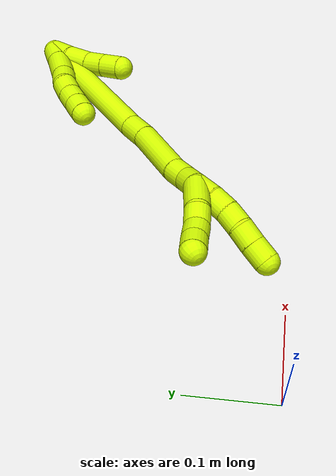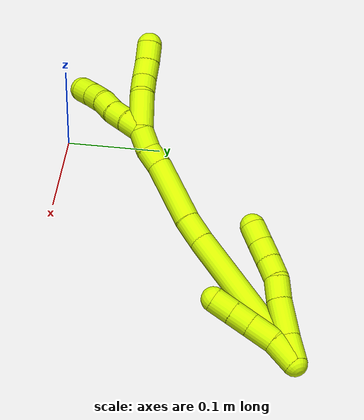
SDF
<sdf version="1.7">
 <world name="default">
  <model name="15">
   <static>0</static>
   <link name="15">
    <collision name="collision-cylinder-e_1_2_8">
     <pose>-0.002762 0.001608 -0.012969 -3.01821 -0.208255 2.07391</pose>
     <geometry><cylinder><radius>0.0125</radius><length>0.026714</length></cylinder></geometry>
     <surface>
      <friction><ode><mu>1.16</mu><mu2>1.16</mu2><slip1>0</slip1><slip2>0</slip2></ode></friction>
      <contact><ode><kp>1e+06</kp><kd>1</kd><max_vel>0</max_vel><min_depth>0.001</min_depth></ode></contact>
     </surface>
    </collision>
    <visual name="visual-cylinder-e_1_2_8">
     <pose>-0.002762 0.001608 -0.012969 -3.01821 -0.208255 2.07391</pose>
     <geometry><cylinder><radius>0.0125</radius><length>0.026714</length></cylinder></geometry>
     <material><ambient>0.835294 1 0 1</ambient></material>
    </visual>
    <collision name="collision-cylinder-e_2_8_9">
     <pose>-0.010261 0.006136 -0.044329 -2.98418 -0.249156 2.0175</pose>
     <geometry><cylinder><radius>0.0125</radius><length>0.038429</length></cylinder></geometry>
     <surface>
      <friction><ode><mu>1.16</mu><mu2>1.16</mu2><slip1>0</slip1><slip2>0</slip2></ode></friction>
      <contact><ode><kp>1e+06</kp><kd>1</kd><max_vel>0</max_vel><min_depth>0.001</min_depth></ode></contact>
     </surface>
    </collision>
    <visual name="visual-cylinder-e_2_8_9">
     <pose>-0.010261 0.006136 -0.044329 -2.98418 -0.249156 2.0175</pose>
     <geometry><cylinder><radius>0.0125</radius><length>0.038429</length></cylinder></geometry>
     <material><ambient>0.835294 1 0 1</ambient></material>
    </visual>
    <collision name="collision-cylinder-e_3_9_10">
     <pose>-0.018651 0.011561 -0.073244 -2.90781 -0.325534 1.90007</pose>
     <geometry><cylinder><radius>0.0125</radius><length>0.022836</length></cylinder></geometry>
     <surface>
      <friction><ode><mu>1.16</mu><mu2>1.16</mu2><slip1>0</slip1><slip2>0</slip2></ode></friction>
      <contact><ode><kp>1e+06</kp><kd>1</kd><max_vel>0</max_vel><min_depth>0.001</min_depth></ode></contact>
     </surface>
    </collision>
    <visual name="visual-cylinder-e_3_9_10">
     <pose>-0.018651 0.011561 -0.073244 -2.90781 -0.325534 1.90007</pose>
     <geometry><cylinder><radius>0.0125</radius><length>0.022836</length></cylinder></geometry>
     <material><ambient>0.835294 1 0 1</ambient></material>
    </visual>
    <collision name="collision-cylinder-e_4_10_11">
     <pose>-0.023043 0.014565 -0.094328 -3.09452 -0.069893 1.95637</pose>
     <geometry><cylinder><radius>0.0125</radius><length>0.021194</length></cylinder></geometry>
     <surface>
      <friction><ode><mu>1.16</mu><mu2>1.16</mu2><slip1>0</slip1><slip2>0</slip2></ode></friction>
      <contact><ode><kp>1e+06</kp><kd>1</kd><max_vel>0</max_vel><min_depth>0.001</min_depth></ode></contact>
     </surface>
    </collision>
    <visual name="visual-cylinder-e_4_10_11">
     <pose>-0.023043 0.014565 -0.094328 -3.09452 -0.069893 1.95637</pose>
     <geometry><cylinder><radius>0.0125</radius><length>0.021194</length></cylinder></geometry>
     <material><ambient>0.835294 1 0 1</ambient></material>
    </visual>
    <collision name="collision-cylinder-e_5_11_12">
     <pose>-0.025278 0.014896 -0.115026 3.12521 -0.146408 -2.91906</pose>
     <geometry><cylinder><radius>0.0125</radius><length>0.020499</length></cylinder></geometry>
     <surface>
      <friction><ode><mu>1.16</mu><mu2>1.16</mu2><slip1>0</slip1><slip2>0</slip2></ode></friction>
      <contact><ode><kp>1e+06</kp><kd>1</kd><max_vel>0</max_vel><min_depth>0.001</min_depth></ode></contact>
     </surface>
    </collision>
    <visual name="visual-cylinder-e_5_11_12">
     <pose>-0.025278 0.014896 -0.115026 3.12521 -0.146408 -2.91906</pose>
     <geometry><cylinder><radius>0.0125</radius><length>0.020499</length></cylinder></geometry>
     <material><ambient>0.835294 1 0 1</ambient></material>
    </visual>
    <collision name="collision-cylinder-e_6_12_6">
     <pose>-0.02828 0.014616 -0.135215 3.13031 -0.148748 -2.99048</pose>
     <geometry><cylinder><radius>0.0125</radius><length>0.020328</length></cylinder></geometry>
     <surface>
      <friction><ode><mu>1.16</mu><mu2>1.16</mu2><slip1>0</slip1><slip2>0</slip2></ode></friction>
      <contact><ode><kp>1e+06</kp><kd>1</kd><max_vel>0</max_vel><min_depth>0.001</min_depth></ode></contact>
     </surface>
    </collision>
    <visual name="visual-cylinder-e_6_12_6">
     <pose>-0.02828 0.014616 -0.135215 3.13031 -0.148748 -2.99048</pose>
     <geometry><cylinder><radius>0.0125</radius><length>0.020328</length></cylinder></geometry>
     <material><ambient>0.835294 1 0 1</ambient></material>
    </visual>
    <collision name="collision-cylinder-e_1_2_13">
     <pose>-0.002238 -0.005172 -0.013307 2.77088 -0.155518 -0.787659</pose>
     <geometry><cylinder><radius>0.0125</radius><length>0.028903</length></cylinder></geometry>
     <surface>
      <friction><ode><mu>1.16</mu><mu2>1.16</mu2><slip1>0</slip1><slip2>0</slip2></ode></friction>
      <contact><ode><kp>1e+06</kp><kd>1</kd><max_vel>0</max_vel><min_depth>0.001</min_depth></ode></contact>
     </surface>
    </collision>
    <visual name="visual-cylinder-e_1_2_13">
     <pose>-0.002238 -0.005172 -0.013307 2.77088 -0.155518 -0.787659</pose>
     <geometry><cylinder><radius>0.0125</radius><length>0.028903</length></cylinder></geometry>
     <material><ambient>0.835294 1 0 1</ambient></material>
    </visual>
    <collision name="collision-cylinder-e_2_13_14">
     <pose>-0.004599 -0.017598 -0.038446 2.59164 -0.00879 -0.031155</pose>
     <geometry><cylinder><radius>0.0125</radius><length>0.027756</length></cylinder></geometry>
     <surface>
      <friction><ode><mu>1.16</mu><mu2>1.16</mu2><slip1>0</slip1><slip2>0</slip2></ode></friction>
      <contact><ode><kp>1e+06</kp><kd>1</kd><max_vel>0</max_vel><min_depth>0.001</min_depth></ode></contact>
     </surface>
    </collision>
    <visual name="visual-cylinder-e_2_13_14">
     <pose>-0.004599 -0.017598 -0.038446 2.59164 -0.00879 -0.031155</pose>
     <geometry><cylinder><radius>0.0125</radius><length>0.027756</length></cylinder></geometry>
     <material><ambient>0.835294 1 0 1</ambient></material>
    </visual>
    <collision name="collision-cylinder-e_3_14_15">
     <pose>-0.005879 -0.031154 -0.058944 2.51283 -0.107687 -0.328512</pose>
     <geometry><cylinder><radius>0.0125</radius><length>0.021558</length></cylinder></geometry>
     <surface>
      <friction><ode><mu>1.16</mu><mu2>1.16</mu2><slip1>0</slip1><slip2>0</slip2></ode></friction>
      <contact><ode><kp>1e+06</kp><kd>1</kd><max_vel>0</max_vel><min_depth>0.001</min_depth></ode></contact>
     </surface>
    </collision>
    <visual name="visual-cylinder-e_3_14_15">
     <pose>-0.005879 -0.031154 -0.058944 2.51283 -0.107687 -0.328512</pose>
     <geometry><cylinder><radius>0.0125</radius><length>0.021558</length></cylinder></geometry>
     <material><ambient>0.835294 1 0 1</ambient></material>
    </visual>
    <collision name="collision-cylinder-e_4_15_5">
     <pose>-0.008204 -0.043835 -0.076362 2.51172 -0.107262 -0.32663</pose>
     <geometry><cylinder><radius>0.0125</radius><length>0.021782</length></cylinder></geometry>
     <surface>
      <friction><ode><mu>1.16</mu><mu2>1.16</mu2><slip1>0</slip1><slip2>0</slip2></ode></friction>
      <contact><ode><kp>1e+06</kp><kd>1</kd><max_vel>0</max_vel><min_depth>0.001</min_depth></ode></contact>
     </surface>
    </collision>
    <visual name="visual-cylinder-e_4_15_5">
     <pose>-0.008204 -0.043835 -0.076362 2.51172 -0.107262 -0.32663</pose>
     <geometry><cylinder><radius>0.0125</radius><length>0.021782</length></cylinder></geometry>
     <material><ambient>0.835294 1 0 1</ambient></material>
    </visual>
    <collision name="collision-cylinder-e_1_2_16">
     <pose>0.000625 -0.013062 -0.080764 2.98125 0.007643 0.09506</pose>
     <geometry><cylinder><radius>0.0125</radius><length>0.163632</length></cylinder></geometry>
     <surface>
      <friction><ode><mu>1.16</mu><mu2>1.16</mu2><slip1>0</slip1><slip2>0</slip2></ode></friction>
      <contact><ode><kp>1e+06</kp><kd>1</kd><max_vel>0</max_vel><min_depth>0.001</min_depth></ode></contact>
     </surface>
    </collision>
    <visual name="visual-cylinder-e_1_2_16">
     <pose>0.000625 -0.013062 -0.080764 2.98125 0.007643 0.09506</pose>
     <geometry><cylinder><radius>0.0125</radius><length>0.163632</length></cylinder></geometry>
     <material><ambient>0.835294 1 0 1</ambient></material>
    </visual>
    <collision name="collision-cylinder-e_2_16_17">
     <pose>-0.000357 -0.028575 -0.174678 2.95736 -0.11964 -1.15038</pose>
     <geometry><cylinder><radius>0.0125</radius><length>0.026944</length></cylinder></geometry>
     <surface>
      <friction><ode><mu>1.16</mu><mu2>1.16</mu2><slip1>0</slip1><slip2>0</slip2></ode></friction>
      <contact><ode><kp>1e+06</kp><kd>1</kd><max_vel>0</max_vel><min_depth>0.001</min_depth></ode></contact>
     </surface>
    </collision>
    <visual name="visual-cylinder-e_2_16_17">
     <pose>-0.000357 -0.028575 -0.174678 2.95736 -0.11964 -1.15038</pose>
     <geometry><cylinder><radius>0.0125</radius><length>0.026944</length></cylinder></geometry>
     <material><ambient>0.835294 1 0 1</ambient></material>
    </visual>
    <collision name="collision-cylinder-e_3_17_18">
     <pose>-0.006497 -0.033076 -0.220896 3.07966 -0.135939 -2.28756</pose>
     <geometry><cylinder><radius>0.0125</radius><length>0.066881</length></cylinder></geometry>
     <surface>
      <friction><ode><mu>1.16</mu><mu2>1.16</mu2><slip1>0</slip1><slip2>0</slip2></ode></friction>
      <contact><ode><kp>1e+06</kp><kd>1</kd><max_vel>0</max_vel><min_depth>0.001</min_depth></ode></contact>
     </surface>
    </collision>
    <visual name="visual-cylinder-e_3_17_18">
     <pose>-0.006497 -0.033076 -0.220896 3.07966 -0.135939 -2.28756</pose>
     <geometry><cylinder><radius>0.0125</radius><length>0.066881</length></cylinder></geometry>
     <material><ambient>0.835294 1 0 1</ambient></material>
    </visual>
    <collision name="collision-cylinder-e_4_18_19">
     <pose>-0.012459 -0.037306 -0.263945 2.92662 -0.139081 -1.14642</pose>
     <geometry><cylinder><radius>0.0125</radius><length>0.02063</length></cylinder></geometry>
     <surface>
      <friction><ode><mu>1.16</mu><mu2>1.16</mu2><slip1>0</slip1><slip2>0</slip2></ode></friction>
      <contact><ode><kp>1e+06</kp><kd>1</kd><max_vel>0</max_vel><min_depth>0.001</min_depth></ode></contact>
     </surface>
    </collision>
    <visual name="visual-cylinder-e_4_18_19">
     <pose>-0.012459 -0.037306 -0.263945 2.92662 -0.139081 -1.14642</pose>
     <geometry><cylinder><radius>0.0125</radius><length>0.02063</length></cylinder></geometry>
     <material><ambient>0.835294 1 0 1</ambient></material>
    </visual>
    <collision name="collision-cylinder-e_5_19_1">
     <pose>-0.018326 -0.040324 -0.283907 3.0577 -0.416985 -2.7499</pose>
     <geometry><cylinder><radius>0.0125</radius><length>0.021912</length></cylinder></geometry>
     <surface>
      <friction><ode><mu>1.16</mu><mu2>1.16</mu2><slip1>0</slip1><slip2>0</slip2></ode></friction>
      <contact><ode><kp>1e+06</kp><kd>1</kd><max_vel>0</max_vel><min_depth>0.001</min_depth></ode></contact>
     </surface>
    </collision>
    <visual name="visual-cylinder-e_5_19_1">
     <pose>-0.018326 -0.040324 -0.283907 3.0577 -0.416985 -2.7499</pose>
     <geometry><cylinder><radius>0.0125</radius><length>0.021912</length></cylinder></geometry>
     <material><ambient>0.835294 1 0 1</ambient></material>
    </visual>
    <collision name="collision-cylinder-e_1_1_20">
     <pose>-0.020862 -0.044698 -0.303049 2.77331 0.191285 0.95128</pose>
     <geometry><cylinder><radius>0.0125</radius><length>0.02</length></cylinder></geometry>
     <surface>
      <friction><ode><mu>1.16</mu><mu2>1.16</mu2><slip1>0</slip1><slip2>0</slip2></ode></friction>
      <contact><ode><kp>1e+06</kp><kd>1</kd><max_vel>0</max_vel><min_depth>0.001</min_depth></ode></contact>
     </surface>
    </collision>
    <visual name="visual-cylinder-e_1_1_20">
     <pose>-0.020862 -0.044698 -0.303049 2.77331 0.191285 0.95128</pose>
     <geometry><cylinder><radius>0.0125</radius><length>0.02</length></cylinder></geometry>
     <material><ambient>0.835294 1 0 1</ambient></material>
    </visual>
    <collision name="collision-cylinder-e_2_20_21">
     <pose>-0.016222 -0.051053 -0.321403 2.84399 0.277494 1.49993</pose>
     <geometry><cylinder><radius>0.0125</radius><length>0.02</length></cylinder></geometry>
     <surface>
      <friction><ode><mu>1.16</mu><mu2>1.16</mu2><slip1>0</slip1><slip2>0</slip2></ode></friction>
      <contact><ode><kp>1e+06</kp><kd>1</kd><max_vel>0</max_vel><min_depth>0.001</min_depth></ode></contact>
     </surface>
    </collision>
    <visual name="visual-cylinder-e_2_20_21">
     <pose>-0.016222 -0.051053 -0.321403 2.84399 0.277494 1.49993</pose>
     <geometry><cylinder><radius>0.0125</radius><length>0.02</length></cylinder></geometry>
     <material><ambient>0.835294 1 0 1</ambient></material>
    </visual>
    <collision name="collision-cylinder-e_3_21_22">
     <pose>-0.011297 -0.054991 -0.340291 3.02677 0.220352 2.18325</pose>
     <geometry><cylinder><radius>0.0125</radius><length>0.02</length></cylinder></geometry>
     <surface>
      <friction><ode><mu>1.16</mu><mu2>1.16</mu2><slip1>0</slip1><slip2>0</slip2></ode></friction>
      <contact><ode><kp>1e+06</kp><kd>1</kd><max_vel>0</max_vel><min_depth>0.001</min_depth></ode></contact>
     </surface>
    </collision>
    <visual name="visual-cylinder-e_3_21_22">
     <pose>-0.011297 -0.054991 -0.340291 3.02677 0.220352 2.18325</pose>
     <geometry><cylinder><radius>0.0125</radius><length>0.02</length></cylinder></geometry>
     <material><ambient>0.835294 1 0 1</ambient></material>
    </visual>
    <collision name="collision-cylinder-e_4_22_23">
     <pose>-0.004705 -0.057276 -0.358886 3.0112 0.456204 2.59327</pose>
     <geometry><cylinder><radius>0.0125</radius><length>0.02</length></cylinder></geometry>
     <surface>
      <friction><ode><mu>1.16</mu><mu2>1.16</mu2><slip1>0</slip1><slip2>0</slip2></ode></friction>
      <contact><ode><kp>1e+06</kp><kd>1</kd><max_vel>0</max_vel><min_depth>0.001</min_depth></ode></contact>
     </surface>
    </collision>
    <visual name="visual-cylinder-e_4_22_23">
     <pose>-0.004705 -0.057276 -0.358886 3.0112 0.456204 2.59327</pose>
     <geometry><cylinder><radius>0.0125</radius><length>0.02</length></cylinder></geometry>
     <material><ambient>0.835294 1 0 1</ambient></material>
    </visual>
    <collision name="collision-cylinder-e_5_23_4">
     <pose>0.004098 -0.060152 -0.376604 2.95018 0.455386 2.35604</pose>
     <geometry><cylinder><radius>0.0125</radius><length>0.02</length></cylinder></geometry>
     <surface>
      <friction><ode><mu>1.16</mu><mu2>1.16</mu2><slip1>0</slip1><slip2>0</slip2></ode></friction>
      <contact><ode><kp>1e+06</kp><kd>1</kd><max_vel>0</max_vel><min_depth>0.001</min_depth></ode></contact>
     </surface>
    </collision>
    <visual name="visual-cylinder-e_5_23_4">
     <pose>0.004098 -0.060152 -0.376604 2.95018 0.455386 2.35604</pose>
     <geometry><cylinder><radius>0.0125</radius><length>0.02</length></cylinder></geometry>
     <material><ambient>0.835294 1 0 1</ambient></material>
    </visual>
    <collision name="collision-cylinder-e_1_1_24">
     <pose>-0.028535 -0.034127 -0.311697 -2.76527 -0.292756 1.31772</pose>
     <geometry><cylinder><radius>0.0125</radius><length>0.039996</length></cylinder></geometry>
     <surface>
      <friction><ode><mu>1.16</mu><mu2>1.16</mu2><slip1>0</slip1><slip2>0</slip2></ode></friction>
      <contact><ode><kp>1e+06</kp><kd>1</kd><max_vel>0</max_vel><min_depth>0.001</min_depth></ode></contact>
     </surface>
    </collision>
    <visual name="visual-cylinder-e_1_1_24">
     <pose>-0.028535 -0.034127 -0.311697 -2.76527 -0.292756 1.31772</pose>
     <geometry><cylinder><radius>0.0125</radius><length>0.039996</length></cylinder></geometry>
     <material><ambient>0.835294 1 0 1</ambient></material>
    </visual>
    <collision name="collision-cylinder-e_2_24_25">
     <pose>-0.034437 -0.022321 -0.338293 -2.64439 -0.01304 0.051358</pose>
     <geometry><cylinder><radius>0.0125</radius><length>0.020002</length></cylinder></geometry>
     <surface>
      <friction><ode><mu>1.16</mu><mu2>1.16</mu2><slip1>0</slip1><slip2>0</slip2></ode></friction>
      <contact><ode><kp>1e+06</kp><kd>1</kd><max_vel>0</max_vel><min_depth>0.001</min_depth></ode></contact>
     </surface>
    </collision>
    <visual name="visual-cylinder-e_2_24_25">
     <pose>-0.034437 -0.022321 -0.338293 -2.64439 -0.01304 0.051358</pose>
     <geometry><cylinder><radius>0.0125</radius><length>0.020002</length></cylinder></geometry>
     <material><ambient>0.835294 1 0 1</ambient></material>
    </visual>
    <collision name="collision-cylinder-e_3_25_26">
     <pose>-0.038076 -0.012981 -0.355257 -2.63184 -0.358523 1.2154</pose>
     <geometry><cylinder><radius>0.0125</radius><length>0.020001</length></cylinder></geometry>
     <surface>
      <friction><ode><mu>1.16</mu><mu2>1.16</mu2><slip1>0</slip1><slip2>0</slip2></ode></friction>
      <contact><ode><kp>1e+06</kp><kd>1</kd><max_vel>0</max_vel><min_depth>0.001</min_depth></ode></contact>
     </surface>
    </collision>
    <visual name="visual-cylinder-e_3_25_26">
     <pose>-0.038076 -0.012981 -0.355257 -2.63184 -0.358523 1.2154</pose>
     <geometry><cylinder><radius>0.0125</radius><length>0.020001</length></cylinder></geometry>
     <material><ambient>0.835294 1 0 1</ambient></material>
    </visual>
    <collision name="collision-cylinder-e_4_26_3">
     <pose>-0.045489 -0.004442 -0.371738 -2.69575 -0.401002 1.46178</pose>
     <geometry><cylinder><radius>0.0125</radius><length>0.020001</length></cylinder></geometry>
     <surface>
      <friction><ode><mu>1.16</mu><mu2>1.16</mu2><slip1>0</slip1><slip2>0</slip2></ode></friction>
      <contact><ode><kp>1e+06</kp><kd>1</kd><max_vel>0</max_vel><min_depth>0.001</min_depth></ode></contact>
     </surface>
    </collision>
    <visual name="visual-cylinder-e_4_26_3">
     <pose>-0.045489 -0.004442 -0.371738 -2.69575 -0.401002 1.46178</pose>
     <geometry><cylinder><radius>0.0125</radius><length>0.020001</length></cylinder></geometry>
     <material><ambient>0.835294 1 0 1</ambient></material>
    </visual>
    <collision name="collision-sphere-3">
     <pose>-0.049392 -0.000471 -0.380045 0 -0 0</pose>
     <geometry><sphere><radius>0.0125</radius></sphere></geometry>
     <surface>
      <friction><ode><mu>1.16</mu><mu2>1.16</mu2><slip1>0</slip1><slip2>0</slip2></ode></friction>
      <contact><ode><kp>1e+06</kp><kd>1</kd><max_vel>0</max_vel><min_depth>0.001</min_depth></ode></contact>
     </surface>
    </collision>
    <visual name="visual-sphere-3">
     <pose>-0.049392 -0.000471 -0.380045 0 -0 0</pose>
     <geometry><sphere><radius>0.0125</radius></sphere></geometry>
     <material><ambient>0.835294 1 0 1</ambient></material>
    </visual>
    <collision name="collision-sphere-26">
     <pose>-0.041585 -0.008412 -0.363431 0 -0 0</pose>
     <geometry><sphere><radius>0.0125</radius></sphere></geometry>
     <surface>
      <friction><ode><mu>1.16</mu><mu2>1.16</mu2><slip1>0</slip1><slip2>0</slip2></ode></friction>
      <contact><ode><kp>1e+06</kp><kd>1</kd><max_vel>0</max_vel><min_depth>0.001</min_depth></ode></contact>
     </surface>
    </collision>
    <visual name="visual-sphere-26">
     <pose>-0.041585 -0.008412 -0.363431 0 -0 0</pose>
     <geometry><sphere><radius>0.0125</radius></sphere></geometry>
     <material><ambient>0.835294 1 0 1</ambient></material>
    </visual>
    <collision name="collision-sphere-25">
     <pose>-0.034567 -0.017551 -0.347083 0 -0 0</pose>
     <geometry><sphere><radius>0.0125</radius></sphere></geometry>
     <surface>
      <friction><ode><mu>1.16</mu><mu2>1.16</mu2><slip1>0</slip1><slip2>0</slip2></ode></friction>
      <contact><ode><kp>1e+06</kp><kd>1</kd><max_vel>0</max_vel><min_depth>0.001</min_depth></ode></contact>
     </surface>
    </collision>
    <visual name="visual-sphere-25">
     <pose>-0.034567 -0.017551 -0.347083 0 -0 0</pose>
     <geometry><sphere><radius>0.0125</radius></sphere></geometry>
     <material><ambient>0.835294 1 0 1</ambient></material>
    </visual>
    <collision name="collision-sphere-24">
     <pose>-0.034306 -0.027091 -0.329504 0 -0 0</pose>
     <geometry><sphere><radius>0.0125</radius></sphere></geometry>
     <surface>
      <friction><ode><mu>1.16</mu><mu2>1.16</mu2><slip1>0</slip1><slip2>0</slip2></ode></friction>
      <contact><ode><kp>1e+06</kp><kd>1</kd><max_vel>0</max_vel><min_depth>0.001</min_depth></ode></contact>
     </surface>
    </collision>
    <visual name="visual-sphere-24">
     <pose>-0.034306 -0.027091 -0.329504 0 -0 0</pose>
     <geometry><sphere><radius>0.0125</radius></sphere></geometry>
     <material><ambient>0.835294 1 0 1</ambient></material>
    </visual>
    <collision name="collision-sphere-4">
     <pose>0.008496 -0.061861 -0.385421 0 -0 0</pose>
     <geometry><sphere><radius>0.0125</radius></sphere></geometry>
     <surface>
      <friction><ode><mu>1.16</mu><mu2>1.16</mu2><slip1>0</slip1><slip2>0</slip2></ode></friction>
      <contact><ode><kp>1e+06</kp><kd>1</kd><max_vel>0</max_vel><min_depth>0.001</min_depth></ode></contact>
     </surface>
    </collision>
    <visual name="visual-sphere-4">
     <pose>0.008496 -0.061861 -0.385421 0 -0 0</pose>
     <geometry><sphere><radius>0.0125</radius></sphere></geometry>
     <material><ambient>0.835294 1 0 1</ambient></material>
    </visual>
    <collision name="collision-sphere-23">
     <pose>-0.0003 -0.058443 -0.367787 0 -0 0</pose>
     <geometry><sphere><radius>0.0125</radius></sphere></geometry>
     <surface>
      <friction><ode><mu>1.16</mu><mu2>1.16</mu2><slip1>0</slip1><slip2>0</slip2></ode></friction>
      <contact><ode><kp>1e+06</kp><kd>1</kd><max_vel>0</max_vel><min_depth>0.001</min_depth></ode></contact>
     </surface>
    </collision>
    <visual name="visual-sphere-23">
     <pose>-0.0003 -0.058443 -0.367787 0 -0 0</pose>
     <geometry><sphere><radius>0.0125</radius></sphere></geometry>
     <material><ambient>0.835294 1 0 1</ambient></material>
    </visual>
    <collision name="collision-sphere-22">
     <pose>-0.009111 -0.056109 -0.349985 0 -0 0</pose>
     <geometry><sphere><radius>0.0125</radius></sphere></geometry>
     <surface>
      <friction><ode><mu>1.16</mu><mu2>1.16</mu2><slip1>0</slip1><slip2>0</slip2></ode></friction>
      <contact><ode><kp>1e+06</kp><kd>1</kd><max_vel>0</max_vel><min_depth>0.001</min_depth></ode></contact>
     </surface>
    </collision>
    <visual name="visual-sphere-22">
     <pose>-0.009111 -0.056109 -0.349985 0 -0 0</pose>
     <geometry><sphere><radius>0.0125</radius></sphere></geometry>
     <material><ambient>0.835294 1 0 1</ambient></material>
    </visual>
    <collision name="collision-sphere-21">
     <pose>-0.013482 -0.053873 -0.330597 0 -0 0</pose>
     <geometry><sphere><radius>0.0125</radius></sphere></geometry>
     <surface>
      <friction><ode><mu>1.16</mu><mu2>1.16</mu2><slip1>0</slip1><slip2>0</slip2></ode></friction>
      <contact><ode><kp>1e+06</kp><kd>1</kd><max_vel>0</max_vel><min_depth>0.001</min_depth></ode></contact>
     </surface>
    </collision>
    <visual name="visual-sphere-21">
     <pose>-0.013482 -0.053873 -0.330597 0 -0 0</pose>
     <geometry><sphere><radius>0.0125</radius></sphere></geometry>
     <material><ambient>0.835294 1 0 1</ambient></material>
    </visual>
    <collision name="collision-sphere-20">
     <pose>-0.018961 -0.048233 -0.312208 0 -0 0</pose>
     <geometry><sphere><radius>0.0125</radius></sphere></geometry>
     <surface>
      <friction><ode><mu>1.16</mu><mu2>1.16</mu2><slip1>0</slip1><slip2>0</slip2></ode></friction>
      <contact><ode><kp>1e+06</kp><kd>1</kd><max_vel>0</max_vel><min_depth>0.001</min_depth></ode></contact>
     </surface>
    </collision>
    <visual name="visual-sphere-20">
     <pose>-0.018961 -0.048233 -0.312208 0 -0 0</pose>
     <geometry><sphere><radius>0.0125</radius></sphere></geometry>
     <material><ambient>0.835294 1 0 1</ambient></material>
    </visual>
    <collision name="collision-sphere-12">
     <pose>-0.026773 0.01473 -0.125164 0 -0 0</pose>
     <geometry><sphere><radius>0.0125</radius></sphere></geometry>
     <surface>
      <friction><ode><mu>1.16</mu><mu2>1.16</mu2><slip1>0</slip1><slip2>0</slip2></ode></friction>
      <contact><ode><kp>1e+06</kp><kd>1</kd><max_vel>0</max_vel><min_depth>0.001</min_depth></ode></contact>
     </surface>
    </collision>
    <visual name="visual-sphere-12">
     <pose>-0.026773 0.01473 -0.125164 0 -0 0</pose>
     <geometry><sphere><radius>0.0125</radius></sphere></geometry>
     <material><ambient>0.835294 1 0 1</ambient></material>
    </visual>
    <collision name="collision-sphere-11">
     <pose>-0.023783 0.015062 -0.104887 0 -0 0</pose>
     <geometry><sphere><radius>0.0125</radius></sphere></geometry>
     <surface>
      <friction><ode><mu>1.16</mu><mu2>1.16</mu2><slip1>0</slip1><slip2>0</slip2></ode></friction>
      <contact><ode><kp>1e+06</kp><kd>1</kd><max_vel>0</max_vel><min_depth>0.001</min_depth></ode></contact>
     </surface>
    </collision>
    <visual name="visual-sphere-11">
     <pose>-0.023783 0.015062 -0.104887 0 -0 0</pose>
     <geometry><sphere><radius>0.0125</radius></sphere></geometry>
     <material><ambient>0.835294 1 0 1</ambient></material>
    </visual>
    <collision name="collision-sphere-10">
     <pose>-0.022303 0.014067 -0.083768 0 -0 0</pose>
     <geometry><sphere><radius>0.0125</radius></sphere></geometry>
     <surface>
      <friction><ode><mu>1.16</mu><mu2>1.16</mu2><slip1>0</slip1><slip2>0</slip2></ode></friction>
      <contact><ode><kp>1e+06</kp><kd>1</kd><max_vel>0</max_vel><min_depth>0.001</min_depth></ode></contact>
     </surface>
    </collision>
    <visual name="visual-sphere-10">
     <pose>-0.022303 0.014067 -0.083768 0 -0 0</pose>
     <geometry><sphere><radius>0.0125</radius></sphere></geometry>
     <material><ambient>0.835294 1 0 1</ambient></material>
    </visual>
    <collision name="collision-sphere-9">
     <pose>-0.014999 0.009055 -0.06272 0 -0 0</pose>
     <geometry><sphere><radius>0.0125</radius></sphere></geometry>
     <surface>
      <friction><ode><mu>1.16</mu><mu2>1.16</mu2><slip1>0</slip1><slip2>0</slip2></ode></friction>
      <contact><ode><kp>1e+06</kp><kd>1</kd><max_vel>0</max_vel><min_depth>0.001</min_depth></ode></contact>
     </surface>
    </collision>
    <visual name="visual-sphere-9">
     <pose>-0.014999 0.009055 -0.06272 0 -0 0</pose>
     <geometry><sphere><radius>0.0125</radius></sphere></geometry>
     <material><ambient>0.835294 1 0 1</ambient></material>
    </visual>
    <collision name="collision-sphere-2">
     <geometry><sphere><radius>0.0125</radius></sphere></geometry>
     <surface>
      <friction><ode><mu>1.16</mu><mu2>1.16</mu2><slip1>0</slip1><slip2>0</slip2></ode></friction>
      <contact><ode><kp>1e+06</kp><kd>1</kd><max_vel>0</max_vel><min_depth>0.001</min_depth></ode></contact>
     </surface>
    </collision>
    <visual name="visual-sphere-2">
     <geometry><sphere><radius>0.0125</radius></sphere></geometry>
     <material><ambient>0.835294 1 0 1</ambient></material>
    </visual>
    <collision name="collision-sphere-19">
     <pose>-0.013889 -0.039485 -0.273925 0 -0 0</pose>
     <geometry><sphere><radius>0.0125</radius></sphere></geometry>
     <surface>
      <friction><ode><mu>1.16</mu><mu2>1.16</mu2><slip1>0</slip1><slip2>0</slip2></ode></friction>
      <contact><ode><kp>1e+06</kp><kd>1</kd><max_vel>0</max_vel><min_depth>0.001</min_depth></ode></contact>
     </surface>
    </collision>
    <visual name="visual-sphere-19">
     <pose>-0.013889 -0.039485 -0.273925 0 -0 0</pose>
     <geometry><sphere><radius>0.0125</radius></sphere></geometry>
     <material><ambient>0.835294 1 0 1</ambient></material>
    </visual>
    <collision name="collision-sphere-8">
     <pose>-0.005523 0.003217 -0.025938 0 -0 0</pose>
     <geometry><sphere><radius>0.0125</radius></sphere></geometry>
     <surface>
      <friction><ode><mu>1.16</mu><mu2>1.16</mu2><slip1>0</slip1><slip2>0</slip2></ode></friction>
      <contact><ode><kp>1e+06</kp><kd>1</kd><max_vel>0</max_vel><min_depth>0.001</min_depth></ode></contact>
     </surface>
    </collision>
    <visual name="visual-sphere-8">
     <pose>-0.005523 0.003217 -0.025938 0 -0 0</pose>
     <geometry><sphere><radius>0.0125</radius></sphere></geometry>
     <material><ambient>0.835294 1 0 1</ambient></material>
    </visual>
    <collision name="collision-sphere-6">
     <pose>-0.029786 0.014503 -0.145266 0 -0 0</pose>
     <geometry><sphere><radius>0.0125</radius></sphere></geometry>
     <surface>
      <friction><ode><mu>1.16</mu><mu2>1.16</mu2><slip1>0</slip1><slip2>0</slip2></ode></friction>
      <contact><ode><kp>1e+06</kp><kd>1</kd><max_vel>0</max_vel><min_depth>0.001</min_depth></ode></contact>
     </surface>
    </collision>
    <visual name="visual-sphere-6">
     <pose>-0.029786 0.014503 -0.145266 0 -0 0</pose>
     <geometry><sphere><radius>0.0125</radius></sphere></geometry>
     <material><ambient>0.835294 1 0 1</ambient></material>
    </visual>
    <collision name="collision-sphere-13">
     <pose>-0.004477 -0.010345 -0.026615 0 -0 0</pose>
     <geometry><sphere><radius>0.0125</radius></sphere></geometry>
     <surface>
      <friction><ode><mu>1.16</mu><mu2>1.16</mu2><slip1>0</slip1><slip2>0</slip2></ode></friction>
      <contact><ode><kp>1e+06</kp><kd>1</kd><max_vel>0</max_vel><min_depth>0.001</min_depth></ode></contact>
     </surface>
    </collision>
    <visual name="visual-sphere-13">
     <pose>-0.004477 -0.010345 -0.026615 0 -0 0</pose>
     <geometry><sphere><radius>0.0125</radius></sphere></geometry>
     <material><ambient>0.835294 1 0 1</ambient></material>
    </visual>
    <collision name="collision-sphere-14">
     <pose>-0.004721 -0.024851 -0.050277 0 -0 0</pose>
     <geometry><sphere><radius>0.0125</radius></sphere></geometry>
     <surface>
      <friction><ode><mu>1.16</mu><mu2>1.16</mu2><slip1>0</slip1><slip2>0</slip2></ode></friction>
      <contact><ode><kp>1e+06</kp><kd>1</kd><max_vel>0</max_vel><min_depth>0.001</min_depth></ode></contact>
     </surface>
    </collision>
    <visual name="visual-sphere-14">
     <pose>-0.004721 -0.024851 -0.050277 0 -0 0</pose>
     <geometry><sphere><radius>0.0125</radius></sphere></geometry>
     <material><ambient>0.835294 1 0 1</ambient></material>
    </visual>
    <collision name="collision-sphere-15">
     <pose>-0.007038 -0.037457 -0.067612 0 -0 0</pose>
     <geometry><sphere><radius>0.0125</radius></sphere></geometry>
     <surface>
      <friction><ode><mu>1.16</mu><mu2>1.16</mu2><slip1>0</slip1><slip2>0</slip2></ode></friction>
      <contact><ode><kp>1e+06</kp><kd>1</kd><max_vel>0</max_vel><min_depth>0.001</min_depth></ode></contact>
     </surface>
    </collision>
    <visual name="visual-sphere-15">
     <pose>-0.007038 -0.037457 -0.067612 0 -0 0</pose>
     <geometry><sphere><radius>0.0125</radius></sphere></geometry>
     <material><ambient>0.835294 1 0 1</ambient></material>
    </visual>
    <collision name="collision-sphere-5">
     <pose>-0.00937 -0.050214 -0.085113 0 -0 0</pose>
     <geometry><sphere><radius>0.0125</radius></sphere></geometry>
     <surface>
      <friction><ode><mu>1.16</mu><mu2>1.16</mu2><slip1>0</slip1><slip2>0</slip2></ode></friction>
      <contact><ode><kp>1e+06</kp><kd>1</kd><max_vel>0</max_vel><min_depth>0.001</min_depth></ode></contact>
     </surface>
    </collision>
    <visual name="visual-sphere-5">
     <pose>-0.00937 -0.050214 -0.085113 0 -0 0</pose>
     <geometry><sphere><radius>0.0125</radius></sphere></geometry>
     <material><ambient>0.835294 1 0 1</ambient></material>
    </visual>
    <collision name="collision-sphere-16">
     <pose>0.001251 -0.026125 -0.161529 0 -0 0</pose>
     <geometry><sphere><radius>0.0125</radius></sphere></geometry>
     <surface>
      <friction><ode><mu>1.16</mu><mu2>1.16</mu2><slip1>0</slip1><slip2>0</slip2></ode></friction>
      <contact><ode><kp>1e+06</kp><kd>1</kd><max_vel>0</max_vel><min_depth>0.001</min_depth></ode></contact>
     </surface>
    </collision>
    <visual name="visual-sphere-16">
     <pose>0.001251 -0.026125 -0.161529 0 -0 0</pose>
     <geometry><sphere><radius>0.0125</radius></sphere></geometry>
     <material><ambient>0.835294 1 0 1</ambient></material>
    </visual>
    <collision name="collision-sphere-17">
     <pose>-0.001965 -0.031025 -0.187827 0 -0 0</pose>
     <geometry><sphere><radius>0.0125</radius></sphere></geometry>
     <surface>
      <friction><ode><mu>1.16</mu><mu2>1.16</mu2><slip1>0</slip1><slip2>0</slip2></ode></friction>
      <contact><ode><kp>1e+06</kp><kd>1</kd><max_vel>0</max_vel><min_depth>0.001</min_depth></ode></contact>
     </surface>
    </collision>
    <visual name="visual-sphere-17">
     <pose>-0.001965 -0.031025 -0.187827 0 -0 0</pose>
     <geometry><sphere><radius>0.0125</radius></sphere></geometry>
     <material><ambient>0.835294 1 0 1</ambient></material>
    </visual>
    <collision name="collision-sphere-18">
     <pose>-0.011029 -0.035126 -0.253964 0 -0 0</pose>
     <geometry><sphere><radius>0.0125</radius></sphere></geometry>
     <surface>
      <friction><ode><mu>1.16</mu><mu2>1.16</mu2><slip1>0</slip1><slip2>0</slip2></ode></friction>
      <contact><ode><kp>1e+06</kp><kd>1</kd><max_vel>0</max_vel><min_depth>0.001</min_depth></ode></contact>
     </surface>
    </collision>
    <visual name="visual-sphere-18">
     <pose>-0.011029 -0.035126 -0.253964 0 -0 0</pose>
     <geometry><sphere><radius>0.0125</radius></sphere></geometry>
     <material><ambient>0.835294 1 0 1</ambient></material>
    </visual>
    <collision name="collision-sphere-1">
     <pose>-0.022764 -0.041164 -0.293889 0 -0 0</pose>
     <geometry><sphere><radius>0.0125</radius></sphere></geometry>
     <surface>
      <friction><ode><mu>1.16</mu><mu2>1.16</mu2><slip1>0</slip1><slip2>0</slip2></ode></friction>
      <contact><ode><kp>1e+06</kp><kd>1</kd><max_vel>0</max_vel><min_depth>0.001</min_depth></ode></contact>
     </surface>
    </collision>
    <visual name="visual-sphere-1">
     <pose>-0.022764 -0.041164 -0.293889 0 -0 0</pose>
     <geometry><sphere><radius>0.0125</radius></sphere></geometry>
     <material><ambient>0.835294 1 0 1</ambient></material>
    </visual>
    <inertial>
     <pose>-0.011273 -0.020142 -0.169806 0 -0 0</pose>
     <mass>0.75</mass>
     <inertia>
      <ixx>0.000381</ixx>
      <ixy>0</ixy>
      <ixz>0</ixz>
      <iyy>-0.000318</iyy>
      <iyz>0</iyz>
      <izz>1.4e-05</izz>
     </inertia>
    </inertial>
   </link>
   <pose>0.369231 0.282341 0.077174 -2.44259 1.34263 -1.88525</pose>
  </model>
 </world>
</sdf>
